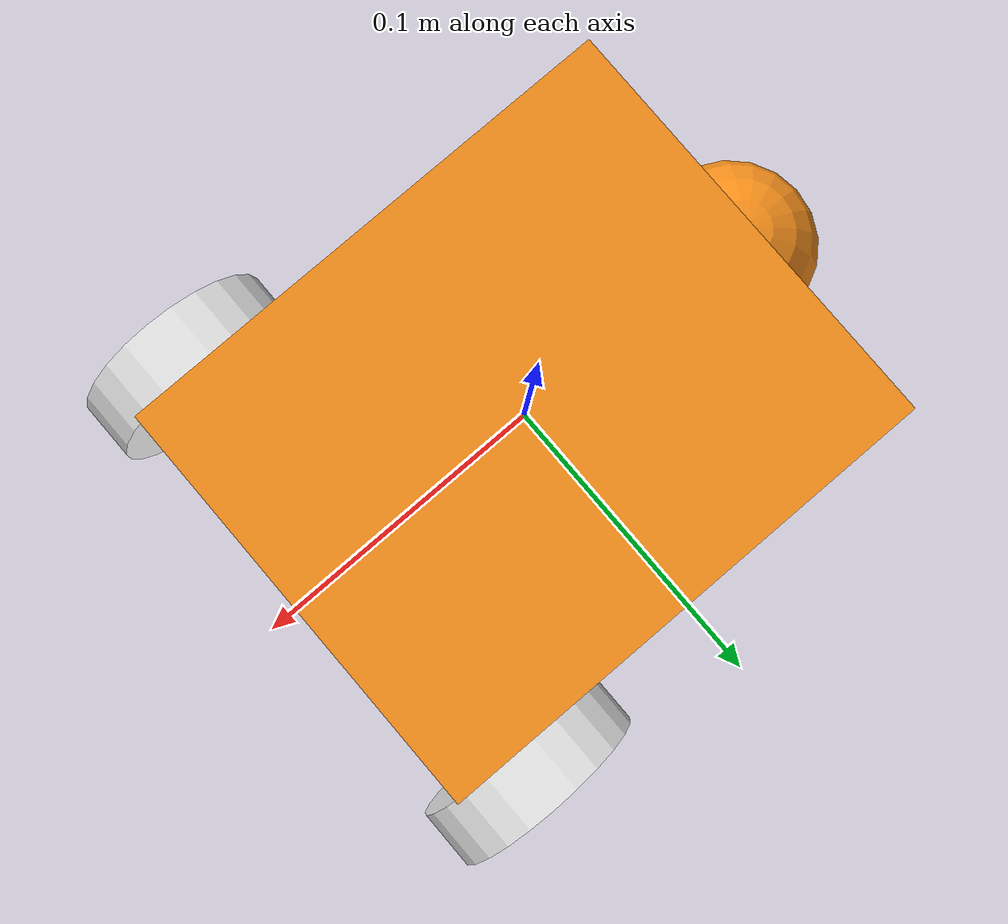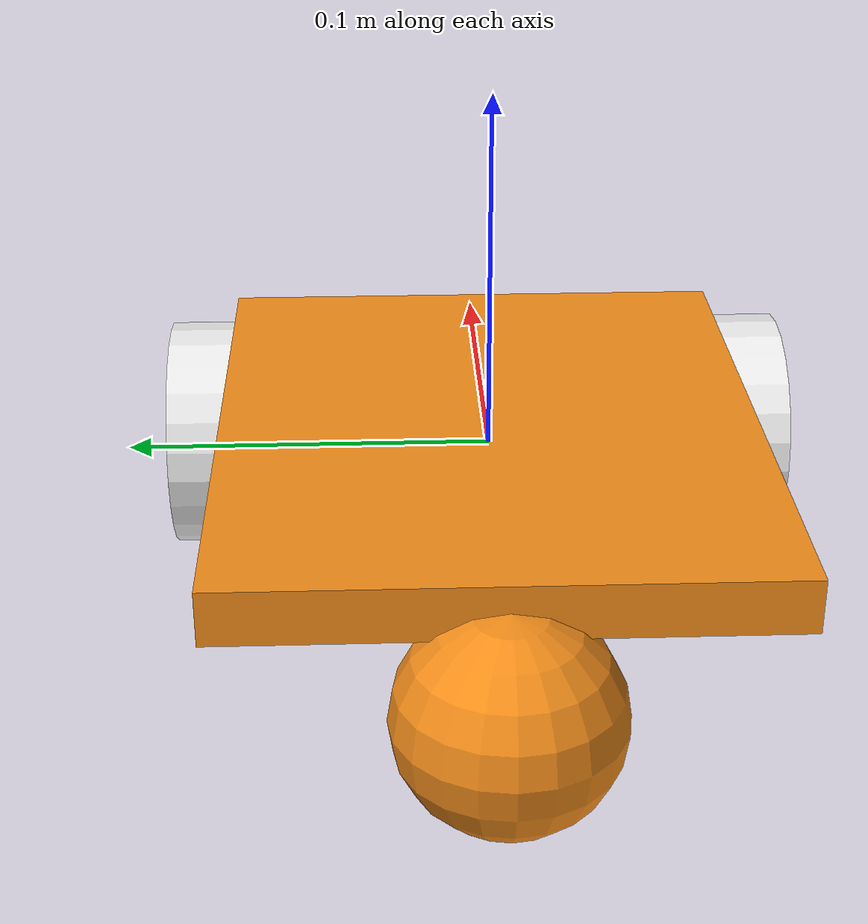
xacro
<?xml version='1.0'?>

<robot name="myrobot" xmlns:xacro="http://www.ros.org/wiki/xacro">

    <xacro:property name="cameraSize" value="0.05" />
    <xacro:property name="cameraMass" value="0.1" />

    <xacro:include filename="$(find aliveos_demo)/urdf/simple_robot.gazebo" />
    <xacro:include filename="$(find aliveos_demo)/urdf/materials.xacro" />
    <xacro:include filename="$(find aliveos_demo)/urdf/macros.xacro" />

    <link name='chassis'>
        <pose>0 0 20 0 0 0</pose>

        <inertial>
            <mass value="15.0" />
            <origin xyz="0.0 0 0.1" rpy=" 0 0 0" />
            <inertia ixx="0.1" ixy="0" ixz="0" iyy="0.1" iyz="0" izz="0.1" />
        </inertial>

        <collision name='collision'>
            <geometry>
                <box size=".18 .15 .015" />
            </geometry>
        </collision>

        <visual name='chassis_visual'>
            <origin xyz="0 0 0" rpy=" 0 0 0" />
            <geometry>
                <box size=".18 .15 .015" />
            </geometry>
        </visual>

        <collision name='caster_collision'>
            <origin xyz="-0.09 0 -0.04" rpy=" 0 0 0" />
            <geometry>
                <sphere radius="0.02" />
            </geometry>
            <surface>
                <friction>
                    <ode>
                        <mu>0</mu>
                        <mu2>0</mu2>
                        <slip1>1.0</slip1>
                        <slip2>1.0</slip2>
                    </ode>
                </friction>
            </surface>
        </collision>

        <visual name='caster_visual'>
            <origin xyz="-0.09 0 -0.03" rpy=" 0 0 0" />
            <geometry>
                <sphere radius="0.03" />
            </geometry>
        </visual>

    </link>

    <link name="left_wheel">
        <collision name="collision">
            <origin xyz="0 0 0" rpy="0 1.5707 1.5707" />
            <geometry>
                <cylinder radius="0.035" length="0.02" />
            </geometry>
        </collision>
        <visual name="left_wheel_visual">
            <origin xyz="0 0 0" rpy="0 1.5707 1.5707" />
            <geometry>
                <cylinder radius="0.035" length="0.02" />
            </geometry>
        </visual>
        <inertial>
            <origin xyz="0 0 0" rpy="0 1.5707 1.5707" />
            <mass value="5" />
            <inertia ixx=".1" ixy="0.0" ixz="0.0" iyy=".1" iyz="0.0" izz=".1" />
        </inertial>
    </link>

    <link name="right_wheel">
        <collision name="collision">
            <origin xyz="0 0 0" rpy="0 1.5707 1.5707" />
            <geometry>
                <cylinder radius="0.035" length="0.02" />
            </geometry>
        </collision>
        <visual name="right_wheel_visual">
            <origin xyz="0 0 0" rpy="0 1.5707 1.5707" />
            <geometry>
                <cylinder radius="0.035" length="0.02" />
            </geometry>
        </visual>
        <inertial>
            <origin xyz="0 0 0" rpy="0 1.5707 1.5707" />
            <mass value="5" />
            <inertia ixx=".1" ixy="0.0" ixz="0.0" iyy=".1" iyz="0.0" izz=".1" />
        </inertial>
    </link>

    <joint type="continuous" name="left_wheel_hinge">
        <origin xyz="0.07 0.085 -.03" rpy="0 0 0" />
        <child link="left_wheel" />
        <parent link="chassis" />
        <axis xyz="0 1 0" rpy="0 0 0" />
        <limit effort="10000" velocity="1000" />
        <joint_properties damping="1.0" friction="1.0" />
    </joint>

    <joint type="continuous" name="right_wheel_hinge">
        <origin xyz="0.07 -0.085 -.03" rpy="0 0 0" />
        <child link="right_wheel" />
        <parent link="chassis" />
        <axis xyz="0 1 0" rpy="0 0 0" />
        <limit effort="10000" velocity="1000" />
        <joint_properties damping="1.0" friction="1.0" />
    </joint>

</robot>
